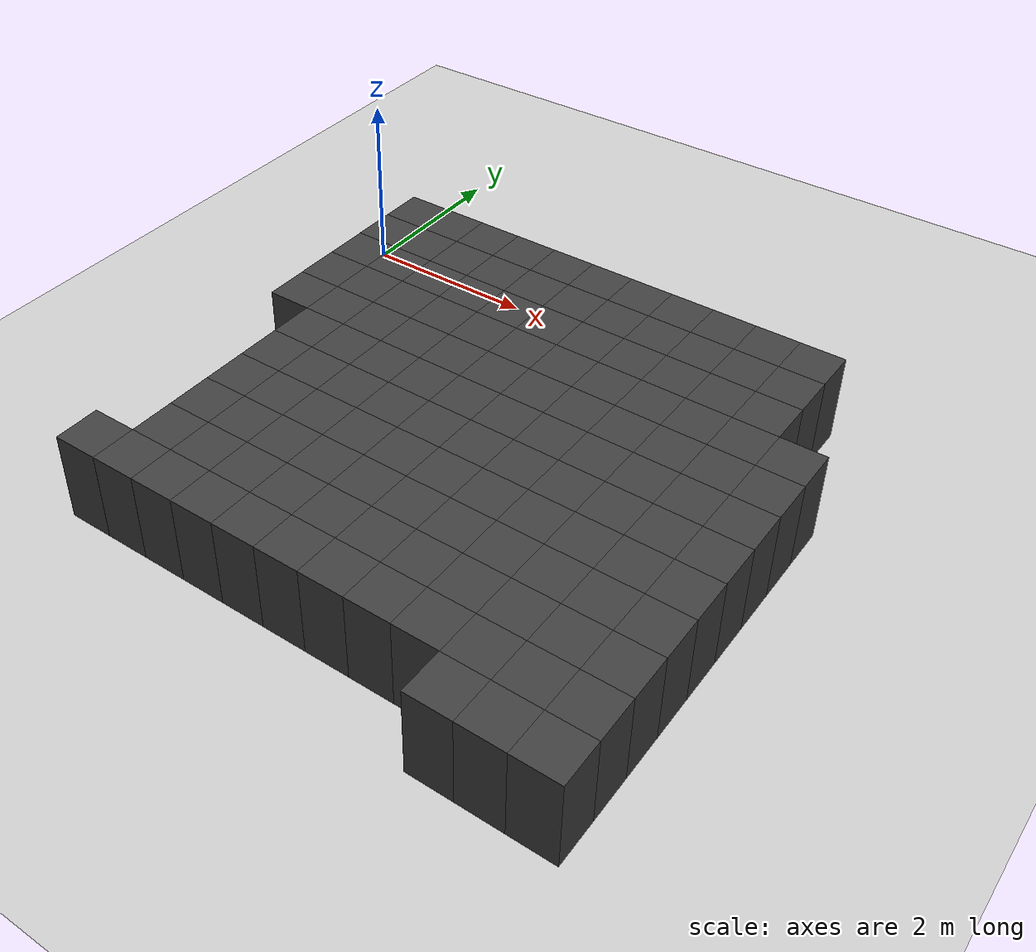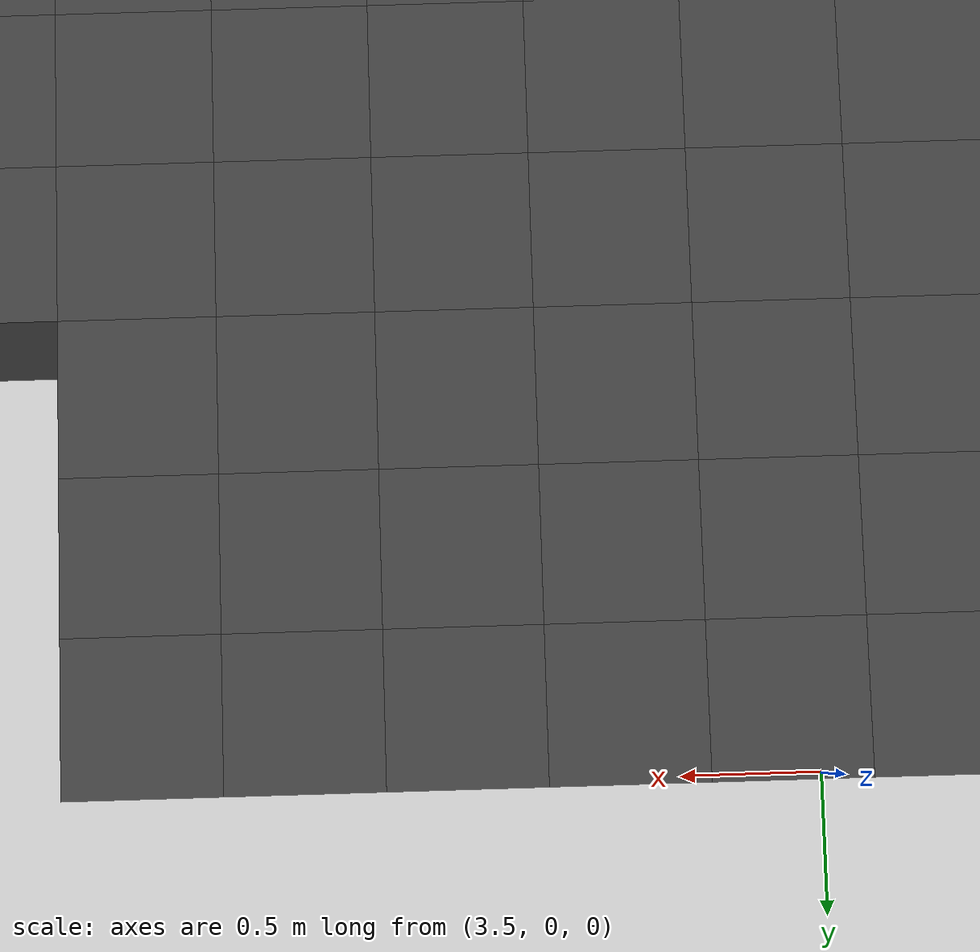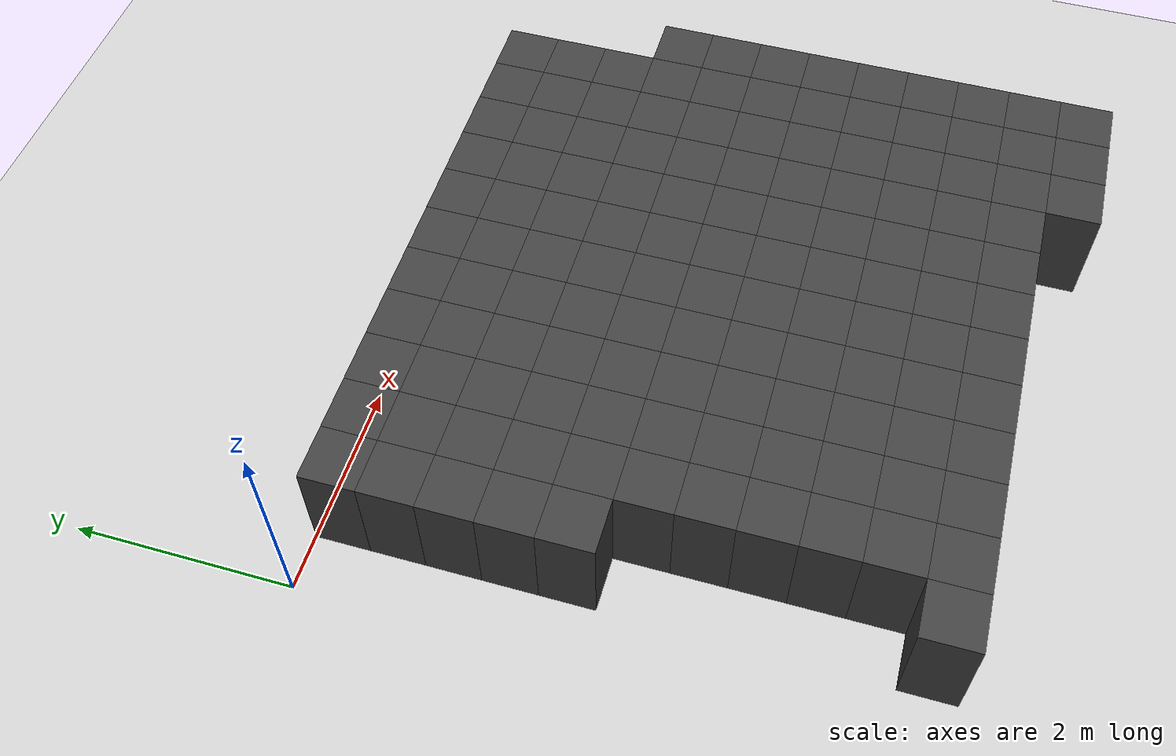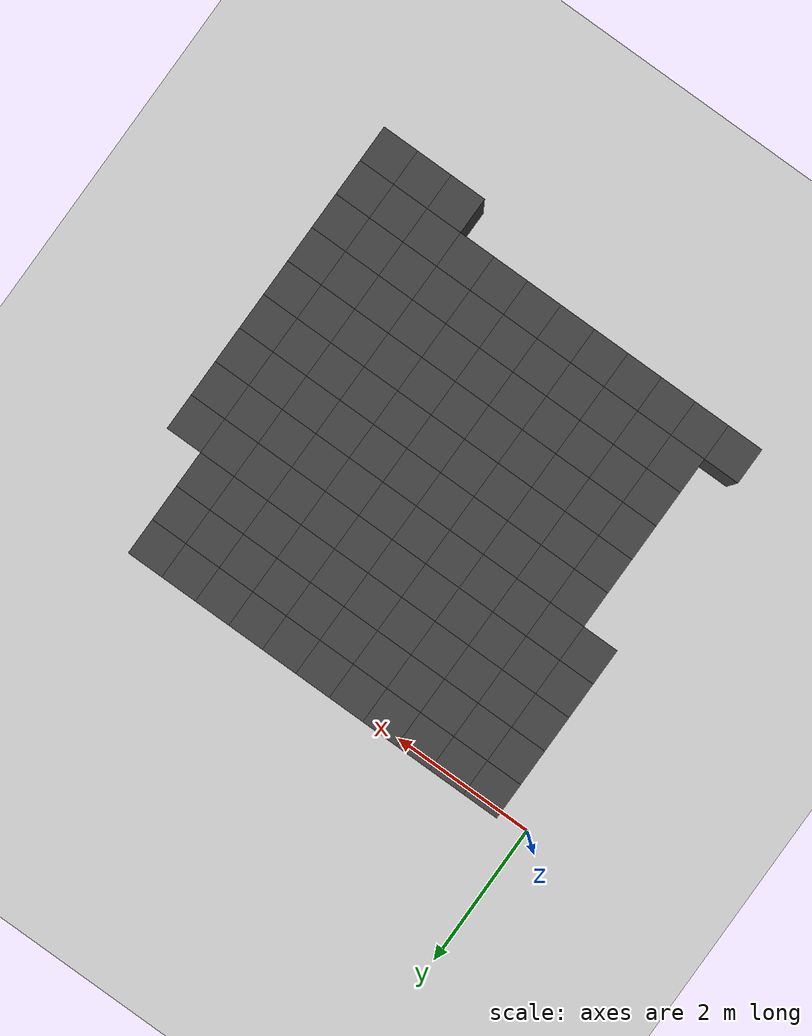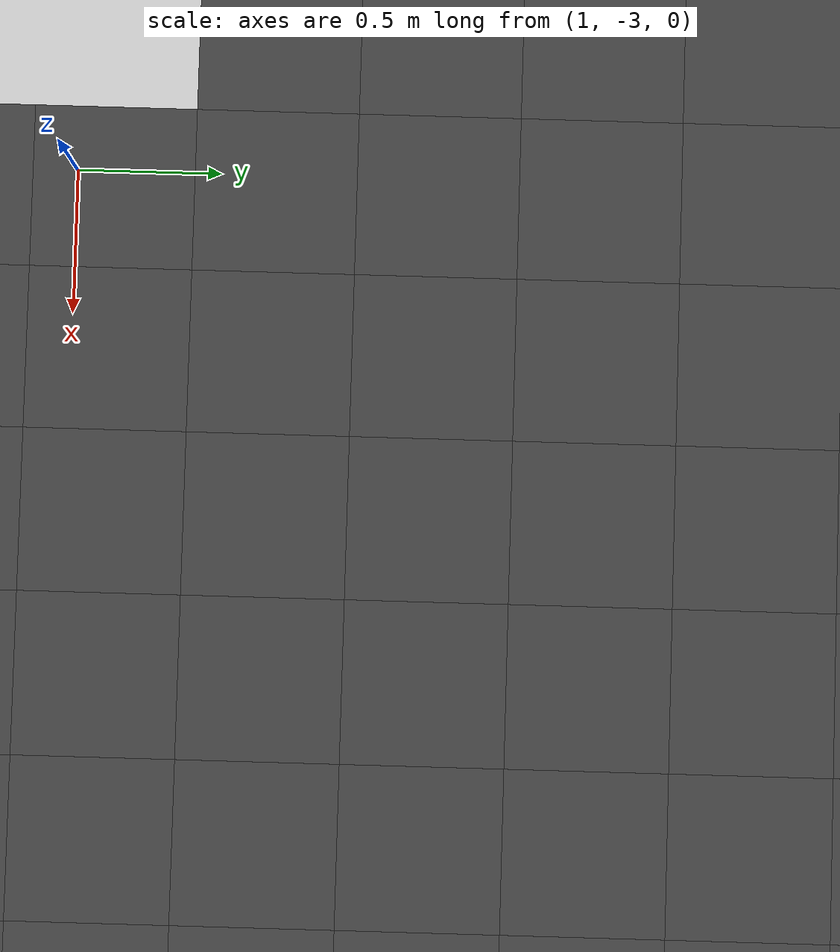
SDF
<sdf version="1.7">
 <world name="map_11779">
  <model name="ground_plane">
   <static>true</static>
   <link name="link">
    <collision name="collision">
     <geometry><plane><normal>0 0 1</normal><size>200 200</size></plane></geometry>
    </collision>
    <visual name="visual">
     <geometry><plane><normal>0 0 1</normal><size>200 200</size></plane></geometry>
     <material><ambient>0.8 0.8 0.8 1</ambient><diffuse>0.8 0.8 0.8 1</diffuse></material>
    </visual>
   </link>
  </model>
  <model name="maze_environment">
   <static>true</static>
   <link name="wall_1030">
    <pose>0.750 -0.250 0.500 0 0 0</pose>
    <collision name="col"><geometry><box><size>0.5 0.5 1.0</size></box></geometry></collision>
    <visual name="vis">
     <geometry><box><size>0.5 0.5 1.0</size></box></geometry>
     <material><ambient>0.15 0.15 0.15 1</ambient><diffuse>0.25 0.25 0.25 1</diffuse></material>
    </visual>
   </link>
   <link name="wall_1031">
    <pose>1.250 -0.250 0.500 0 0 0</pose>
    <collision name="col"><geometry><box><size>0.5 0.5 1.0</size></box></geometry></collision>
    <visual name="vis">
     <geometry><box><size>0.5 0.5 1.0</size></box></geometry>
     <material><ambient>0.15 0.15 0.15 1</ambient><diffuse>0.25 0.25 0.25 1</diffuse></material>
    </visual>
   </link>
   <link name="wall_1032">
    <pose>1.750 -0.250 0.500 0 0 0</pose>
    <collision name="col"><geometry><box><size>0.5 0.5 1.0</size></box></geometry></collision>
    <visual name="vis">
     <geometry><box><size>0.5 0.5 1.0</size></box></geometry>
     <material><ambient>0.15 0.15 0.15 1</ambient><diffuse>0.25 0.25 0.25 1</diffuse></material>
    </visual>
   </link>
   <link name="wall_1033">
    <pose>2.250 -0.250 0.500 0 0 0</pose>
    <collision name="col"><geometry><box><size>0.5 0.5 1.0</size></box></geometry></collision>
    <visual name="vis">
     <geometry><box><size>0.5 0.5 1.0</size></box></geometry>
     <material><ambient>0.15 0.15 0.15 1</ambient><diffuse>0.25 0.25 0.25 1</diffuse></material>
    </visual>
   </link>
   <link name="wall_1034">
    <pose>2.750 -0.250 0.500 0 0 0</pose>
    <collision name="col"><geometry><box><size>0.5 0.5 1.0</size></box></geometry></collision>
    <visual name="vis">
     <geometry><box><size>0.5 0.5 1.0</size></box></geometry>
     <material><ambient>0.15 0.15 0.15 1</ambient><diffuse>0.25 0.25 0.25 1</diffuse></material>
    </visual>
   </link>
   <link name="wall_1035">
    <pose>3.250 -0.250 0.500 0 0 0</pose>
    <collision name="col"><geometry><box><size>0.5 0.5 1.0</size></box></geometry></collision>
    <visual name="vis">
     <geometry><box><size>0.5 0.5 1.0</size></box></geometry>
     <material><ambient>0.15 0.15 0.15 1</ambient><diffuse>0.25 0.25 0.25 1</diffuse></material>
    </visual>
   </link>
   <link name="wall_1036">
    <pose>3.750 -0.250 0.500 0 0 0</pose>
    <collision name="col"><geometry><box><size>0.5 0.5 1.0</size></box></geometry></collision>
    <visual name="vis">
     <geometry><box><size>0.5 0.5 1.0</size></box></geometry>
     <material><ambient>0.15 0.15 0.15 1</ambient><diffuse>0.25 0.25 0.25 1</diffuse></material>
    </visual>
   </link>
   <link name="wall_1037">
    <pose>4.250 -0.250 0.500 0 0 0</pose>
    <collision name="col"><geometry><box><size>0.5 0.5 1.0</size></box></geometry></collision>
    <visual name="vis">
     <geometry><box><size>0.5 0.5 1.0</size></box></geometry>
     <material><ambient>0.15 0.15 0.15 1</ambient><diffuse>0.25 0.25 0.25 1</diffuse></material>
    </visual>
   </link>
   <link name="wall_1038">
    <pose>4.750 -0.250 0.500 0 0 0</pose>
    <collision name="col"><geometry><box><size>0.5 0.5 1.0</size></box></geometry></collision>
    <visual name="vis">
     <geometry><box><size>0.5 0.5 1.0</size></box></geometry>
     <material><ambient>0.15 0.15 0.15 1</ambient><diffuse>0.25 0.25 0.25 1</diffuse></material>
    </visual>
   </link>
   <link name="wall_1039">
    <pose>5.250 -0.250 0.500 0 0 0</pose>
    <collision name="col"><geometry><box><size>0.5 0.5 1.0</size></box></geometry></collision>
    <visual name="vis">
     <geometry><box><size>0.5 0.5 1.0</size></box></geometry>
     <material><ambient>0.15 0.15 0.15 1</ambient><diffuse>0.25 0.25 0.25 1</diffuse></material>
    </visual>
   </link>
   <link name="wall_1040">
    <pose>5.750 -0.250 0.500 0 0 0</pose>
    <collision name="col"><geometry><box><size>0.5 0.5 1.0</size></box></geometry></collision>
    <visual name="vis">
     <geometry><box><size>0.5 0.5 1.0</size></box></geometry>
     <material><ambient>0.15 0.15 0.15 1</ambient><diffuse>0.25 0.25 0.25 1</diffuse></material>
    </visual>
   </link>
   <link name="wall_1071">
    <pose>0.750 -0.750 0.500 0 0 0</pose>
    <collision name="col"><geometry><box><size>0.5 0.5 1.0</size></box></geometry></collision>
    <visual name="vis">
     <geometry><box><size>0.5 0.5 1.0</size></box></geometry>
     <material><ambient>0.15 0.15 0.15 1</ambient><diffuse>0.25 0.25 0.25 1</diffuse></material>
    </visual>
   </link>
   <link name="wall_1072">
    <pose>1.250 -0.750 0.500 0 0 0</pose>
    <collision name="col"><geometry><box><size>0.5 0.5 1.0</size></box></geometry></collision>
    <visual name="vis">
     <geometry><box><size>0.5 0.5 1.0</size></box></geometry>
     <material><ambient>0.15 0.15 0.15 1</ambient><diffuse>0.25 0.25 0.25 1</diffuse></material>
    </visual>
   </link>
   <link name="wall_1073">
    <pose>1.750 -0.750 0.500 0 0 0</pose>
    <collision name="col"><geometry><box><size>0.5 0.5 1.0</size></box></geometry></collision>
    <visual name="vis">
     <geometry><box><size>0.5 0.5 1.0</size></box></geometry>
     <material><ambient>0.15 0.15 0.15 1</ambient><diffuse>0.25 0.25 0.25 1</diffuse></material>
    </visual>
   </link>
   <link name="wall_1074">
    <pose>2.250 -0.750 0.500 0 0 0</pose>
    <collision name="col"><geometry><box><size>0.5 0.5 1.0</size></box></geometry></collision>
    <visual name="vis">
     <geometry><box><size>0.5 0.5 1.0</size></box></geometry>
     <material><ambient>0.15 0.15 0.15 1</ambient><diffuse>0.25 0.25 0.25 1</diffuse></material>
    </visual>
   </link>
   <link name="wall_1075">
    <pose>2.750 -0.750 0.500 0 0 0</pose>
    <collision name="col"><geometry><box><size>0.5 0.5 1.0</size></box></geometry></collision>
    <visual name="vis">
     <geometry><box><size>0.5 0.5 1.0</size></box></geometry>
     <material><ambient>0.15 0.15 0.15 1</ambient><diffuse>0.25 0.25 0.25 1</diffuse></material>
    </visual>
   </link>
   <link name="wall_1076">
    <pose>3.250 -0.750 0.500 0 0 0</pose>
    <collision name="col"><geometry><box><size>0.5 0.5 1.0</size></box></geometry></collision>
    <visual name="vis">
     <geometry><box><size>0.5 0.5 1.0</size></box></geometry>
     <material><ambient>0.15 0.15 0.15 1</ambient><diffuse>0.25 0.25 0.25 1</diffuse></material>
    </visual>
   </link>
   <link name="wall_1077">
    <pose>3.750 -0.750 0.500 0 0 0</pose>
    <collision name="col"><geometry><box><size>0.5 0.5 1.0</size></box></geometry></collision>
    <visual name="vis">
     <geometry><box><size>0.5 0.5 1.0</size></box></geometry>
     <material><ambient>0.15 0.15 0.15 1</ambient><diffuse>0.25 0.25 0.25 1</diffuse></material>
    </visual>
   </link>
   <link name="wall_1078">
    <pose>4.250 -0.750 0.500 0 0 0</pose>
    <collision name="col"><geometry><box><size>0.5 0.5 1.0</size></box></geometry></collision>
    <visual name="vis">
     <geometry><box><size>0.5 0.5 1.0</size></box></geometry>
     <material><ambient>0.15 0.15 0.15 1</ambient><diffuse>0.25 0.25 0.25 1</diffuse></material>
    </visual>
   </link>
   <link name="wall_1079">
    <pose>4.750 -0.750 0.500 0 0 0</pose>
    <collision name="col"><geometry><box><size>0.5 0.5 1.0</size></box></geometry></collision>
    <visual name="vis">
     <geometry><box><size>0.5 0.5 1.0</size></box></geometry>
     <material><ambient>0.15 0.15 0.15 1</ambient><diffuse>0.25 0.25 0.25 1</diffuse></material>
    </visual>
   </link>
   <link name="wall_1080">
    <pose>5.250 -0.750 0.500 0 0 0</pose>
    <collision name="col"><geometry><box><size>0.5 0.5 1.0</size></box></geometry></collision>
    <visual name="vis">
     <geometry><box><size>0.5 0.5 1.0</size></box></geometry>
     <material><ambient>0.15 0.15 0.15 1</ambient><diffuse>0.25 0.25 0.25 1</diffuse></material>
    </visual>
   </link>
   <link name="wall_1081">
    <pose>5.750 -0.750 0.500 0 0 0</pose>
    <collision name="col"><geometry><box><size>0.5 0.5 1.0</size></box></geometry></collision>
    <visual name="vis">
     <geometry><box><size>0.5 0.5 1.0</size></box></geometry>
     <material><ambient>0.15 0.15 0.15 1</ambient><diffuse>0.25 0.25 0.25 1</diffuse></material>
    </visual>
   </link>
   <link name="wall_1111">
    <pose>0.750 -1.250 0.500 0 0 0</pose>
    <collision name="col"><geometry><box><size>0.5 0.5 1.0</size></box></geometry></collision>
    <visual name="vis">
     <geometry><box><size>0.5 0.5 1.0</size></box></geometry>
     <material><ambient>0.15 0.15 0.15 1</ambient><diffuse>0.25 0.25 0.25 1</diffuse></material>
    </visual>
   </link>
   <link name="wall_1112">
    <pose>1.250 -1.250 0.500 0 0 0</pose>
    <collision name="col"><geometry><box><size>0.5 0.5 1.0</size></box></geometry></collision>
    <visual name="vis">
     <geometry><box><size>0.5 0.5 1.0</size></box></geometry>
     <material><ambient>0.15 0.15 0.15 1</ambient><diffuse>0.25 0.25 0.25 1</diffuse></material>
    </visual>
   </link>
   <link name="wall_1113">
    <pose>1.750 -1.250 0.500 0 0 0</pose>
    <collision name="col"><geometry><box><size>0.5 0.5 1.0</size></box></geometry></collision>
    <visual name="vis">
     <geometry><box><size>0.5 0.5 1.0</size></box></geometry>
     <material><ambient>0.15 0.15 0.15 1</ambient><diffuse>0.25 0.25 0.25 1</diffuse></material>
    </visual>
   </link>
   <link name="wall_1114">
    <pose>2.250 -1.250 0.500 0 0 0</pose>
    <collision name="col"><geometry><box><size>0.5 0.5 1.0</size></box></geometry></collision>
    <visual name="vis">
     <geometry><box><size>0.5 0.5 1.0</size></box></geometry>
     <material><ambient>0.15 0.15 0.15 1</ambient><diffuse>0.25 0.25 0.25 1</diffuse></material>
    </visual>
   </link>
   <link name="wall_1115">
    <pose>2.750 -1.250 0.500 0 0 0</pose>
    <collision name="col"><geometry><box><size>0.5 0.5 1.0</size></box></geometry></collision>
    <visual name="vis">
     <geometry><box><size>0.5 0.5 1.0</size></box></geometry>
     <material><ambient>0.15 0.15 0.15 1</ambient><diffuse>0.25 0.25 0.25 1</diffuse></material>
    </visual>
   </link>
   <link name="wall_1116">
    <pose>3.250 -1.250 0.500 0 0 0</pose>
    <collision name="col"><geometry><box><size>0.5 0.5 1.0</size></box></geometry></collision>
    <visual name="vis">
     <geometry><box><size>0.5 0.5 1.0</size></box></geometry>
     <material><ambient>0.15 0.15 0.15 1</ambient><diffuse>0.25 0.25 0.25 1</diffuse></material>
    </visual>
   </link>
   <link name="wall_1117">
    <pose>3.750 -1.250 0.500 0 0 0</pose>
    <collision name="col"><geometry><box><size>0.5 0.5 1.0</size></box></geometry></collision>
    <visual name="vis">
     <geometry><box><size>0.5 0.5 1.0</size></box></geometry>
     <material><ambient>0.15 0.15 0.15 1</ambient><diffuse>0.25 0.25 0.25 1</diffuse></material>
    </visual>
   </link>
   <link name="wall_1118">
    <pose>4.250 -1.250 0.500 0 0 0</pose>
    <collision name="col"><geometry><box><size>0.5 0.5 1.0</size></box></geometry></collision>
    <visual name="vis">
     <geometry><box><size>0.5 0.5 1.0</size></box></geometry>
     <material><ambient>0.15 0.15 0.15 1</ambient><diffuse>0.25 0.25 0.25 1</diffuse></material>
    </visual>
   </link>
   <link name="wall_1119">
    <pose>4.750 -1.250 0.500 0 0 0</pose>
    <collision name="col"><geometry><box><size>0.5 0.5 1.0</size></box></geometry></collision>
    <visual name="vis">
     <geometry><box><size>0.5 0.5 1.0</size></box></geometry>
     <material><ambient>0.15 0.15 0.15 1</ambient><diffuse>0.25 0.25 0.25 1</diffuse></material>
    </visual>
   </link>
   <link name="wall_1120">
    <pose>5.250 -1.250 0.500 0 0 0</pose>
    <collision name="col"><geometry><box><size>0.5 0.5 1.0</size></box></geometry></collision>
    <visual name="vis">
     <geometry><box><size>0.5 0.5 1.0</size></box></geometry>
     <material><ambient>0.15 0.15 0.15 1</ambient><diffuse>0.25 0.25 0.25 1</diffuse></material>
    </visual>
   </link>
   <link name="wall_1121">
    <pose>5.750 -1.250 0.500 0 0 0</pose>
    <collision name="col"><geometry><box><size>0.5 0.5 1.0</size></box></geometry></collision>
    <visual name="vis">
     <geometry><box><size>0.5 0.5 1.0</size></box></geometry>
     <material><ambient>0.15 0.15 0.15 1</ambient><diffuse>0.25 0.25 0.25 1</diffuse></material>
    </visual>
   </link>
   <link name="wall_1153">
    <pose>0.750 -1.750 0.500 0 0 0</pose>
    <collision name="col"><geometry><box><size>0.5 0.5 1.0</size></box></geometry></collision>
    <visual name="vis">
     <geometry><box><size>0.5 0.5 1.0</size></box></geometry>
     <material><ambient>0.15 0.15 0.15 1</ambient><diffuse>0.25 0.25 0.25 1</diffuse></material>
    </visual>
   </link>
   <link name="wall_1154">
    <pose>1.250 -1.750 0.500 0 0 0</pose>
    <collision name="col"><geometry><box><size>0.5 0.5 1.0</size></box></geometry></collision>
    <visual name="vis">
     <geometry><box><size>0.5 0.5 1.0</size></box></geometry>
     <material><ambient>0.15 0.15 0.15 1</ambient><diffuse>0.25 0.25 0.25 1</diffuse></material>
    </visual>
   </link>
   <link name="wall_1155">
    <pose>1.750 -1.750 0.500 0 0 0</pose>
    <collision name="col"><geometry><box><size>0.5 0.5 1.0</size></box></geometry></collision>
    <visual name="vis">
     <geometry><box><size>0.5 0.5 1.0</size></box></geometry>
     <material><ambient>0.15 0.15 0.15 1</ambient><diffuse>0.25 0.25 0.25 1</diffuse></material>
    </visual>
   </link>
   <link name="wall_1156">
    <pose>2.250 -1.750 0.500 0 0 0</pose>
    <collision name="col"><geometry><box><size>0.5 0.5 1.0</size></box></geometry></collision>
    <visual name="vis">
     <geometry><box><size>0.5 0.5 1.0</size></box></geometry>
     <material><ambient>0.15 0.15 0.15 1</ambient><diffuse>0.25 0.25 0.25 1</diffuse></material>
    </visual>
   </link>
   <link name="wall_1157">
    <pose>2.750 -1.750 0.500 0 0 0</pose>
    <collision name="col"><geometry><box><size>0.5 0.5 1.0</size></box></geometry></collision>
    <visual name="vis">
     <geometry><box><size>0.5 0.5 1.0</size></box></geometry>
     <material><ambient>0.15 0.15 0.15 1</ambient><diffuse>0.25 0.25 0.25 1</diffuse></material>
    </visual>
   </link>
   <link name="wall_1158">
    <pose>3.250 -1.750 0.500 0 0 0</pose>
    <collision name="col"><geometry><box><size>0.5 0.5 1.0</size></box></geometry></collision>
    <visual name="vis">
     <geometry><box><size>0.5 0.5 1.0</size></box></geometry>
     <material><ambient>0.15 0.15 0.15 1</ambient><diffuse>0.25 0.25 0.25 1</diffuse></material>
    </visual>
   </link>
   <link name="wall_1159">
    <pose>3.750 -1.750 0.500 0 0 0</pose>
    <collision name="col"><geometry><box><size>0.5 0.5 1.0</size></box></geometry></collision>
    <visual name="vis">
     <geometry><box><size>0.5 0.5 1.0</size></box></geometry>
     <material><ambient>0.15 0.15 0.15 1</ambient><diffuse>0.25 0.25 0.25 1</diffuse></material>
    </visual>
   </link>
   <link name="wall_1160">
    <pose>4.250 -1.750 0.500 0 0 0</pose>
    <collision name="col"><geometry><box><size>0.5 0.5 1.0</size></box></geometry></collision>
    <visual name="vis">
     <geometry><box><size>0.5 0.5 1.0</size></box></geometry>
     <material><ambient>0.15 0.15 0.15 1</ambient><diffuse>0.25 0.25 0.25 1</diffuse></material>
    </visual>
   </link>
   <link name="wall_1161">
    <pose>4.750 -1.750 0.500 0 0 0</pose>
    <collision name="col"><geometry><box><size>0.5 0.5 1.0</size></box></geometry></collision>
    <visual name="vis">
     <geometry><box><size>0.5 0.5 1.0</size></box></geometry>
     <material><ambient>0.15 0.15 0.15 1</ambient><diffuse>0.25 0.25 0.25 1</diffuse></material>
    </visual>
   </link>
   <link name="wall_1162">
    <pose>5.250 -1.750 0.500 0 0 0</pose>
    <collision name="col"><geometry><box><size>0.5 0.5 1.0</size></box></geometry></collision>
    <visual name="vis">
     <geometry><box><size>0.5 0.5 1.0</size></box></geometry>
     <material><ambient>0.15 0.15 0.15 1</ambient><diffuse>0.25 0.25 0.25 1</diffuse></material>
    </visual>
   </link>
   <link name="wall_1163">
    <pose>5.750 -1.750 0.500 0 0 0</pose>
    <collision name="col"><geometry><box><size>0.5 0.5 1.0</size></box></geometry></collision>
    <visual name="vis">
     <geometry><box><size>0.5 0.5 1.0</size></box></geometry>
     <material><ambient>0.15 0.15 0.15 1</ambient><diffuse>0.25 0.25 0.25 1</diffuse></material>
    </visual>
   </link>
   <link name="wall_1164">
    <pose>6.250 -1.750 0.500 0 0 0</pose>
    <collision name="col"><geometry><box><size>0.5 0.5 1.0</size></box></geometry></collision>
    <visual name="vis">
     <geometry><box><size>0.5 0.5 1.0</size></box></geometry>
     <material><ambient>0.15 0.15 0.15 1</ambient><diffuse>0.25 0.25 0.25 1</diffuse></material>
    </visual>
   </link>
   <link name="wall_1195">
    <pose>0.750 -2.250 0.500 0 0 0</pose>
    <collision name="col"><geometry><box><size>0.5 0.5 1.0</size></box></geometry></collision>
    <visual name="vis">
     <geometry><box><size>0.5 0.5 1.0</size></box></geometry>
     <material><ambient>0.15 0.15 0.15 1</ambient><diffuse>0.25 0.25 0.25 1</diffuse></material>
    </visual>
   </link>
   <link name="wall_1196">
    <pose>1.250 -2.250 0.500 0 0 0</pose>
    <collision name="col"><geometry><box><size>0.5 0.5 1.0</size></box></geometry></collision>
    <visual name="vis">
     <geometry><box><size>0.5 0.5 1.0</size></box></geometry>
     <material><ambient>0.15 0.15 0.15 1</ambient><diffuse>0.25 0.25 0.25 1</diffuse></material>
    </visual>
   </link>
   <link name="wall_1197">
    <pose>1.750 -2.250 0.500 0 0 0</pose>
    <collision name="col"><geometry><box><size>0.5 0.5 1.0</size></box></geometry></collision>
    <visual name="vis">
     <geometry><box><size>0.5 0.5 1.0</size></box></geometry>
     <material><ambient>0.15 0.15 0.15 1</ambient><diffuse>0.25 0.25 0.25 1</diffuse></material>
    </visual>
   </link>
   <link name="wall_1198">
    <pose>2.250 -2.250 0.500 0 0 0</pose>
    <collision name="col"><geometry><box><size>0.5 0.5 1.0</size></box></geometry></collision>
    <visual name="vis">
     <geometry><box><size>0.5 0.5 1.0</size></box></geometry>
     <material><ambient>0.15 0.15 0.15 1</ambient><diffuse>0.25 0.25 0.25 1</diffuse></material>
    </visual>
   </link>
   <link name="wall_1199">
    <pose>2.750 -2.250 0.500 0 0 0</pose>
    <collision name="col"><geometry><box><size>0.5 0.5 1.0</size></box></geometry></collision>
    <visual name="vis">
     <geometry><box><size>0.5 0.5 1.0</size></box></geometry>
     <material><ambient>0.15 0.15 0.15 1</ambient><diffuse>0.25 0.25 0.25 1</diffuse></material>
    </visual>
   </link>
   <link name="wall_1200">
    <pose>3.250 -2.250 0.500 0 0 0</pose>
    <collision name="col"><geometry><box><size>0.5 0.5 1.0</size></box></geometry></collision>
    <visual name="vis">
     <geometry><box><size>0.5 0.5 1.0</size></box></geometry>
     <material><ambient>0.15 0.15 0.15 1</ambient><diffuse>0.25 0.25 0.25 1</diffuse></material>
    </visual>
   </link>
   <link name="wall_1201">
    <pose>3.750 -2.250 0.500 0 0 0</pose>
    <collision name="col"><geometry><box><size>0.5 0.5 1.0</size></box></geometry></collision>
    <visual name="vis">
     <geometry><box><size>0.5 0.5 1.0</size></box></geometry>
     <material><ambient>0.15 0.15 0.15 1</ambient><diffuse>0.25 0.25 0.25 1</diffuse></material>
    </visual>
   </link>
   <link name="wall_1202">
    <pose>4.250 -2.250 0.500 0 0 0</pose>
    <collision name="col"><geometry><box><size>0.5 0.5 1.0</size></box></geometry></collision>
    <visual name="vis">
     <geometry><box><size>0.5 0.5 1.0</size></box></geometry>
     <material><ambient>0.15 0.15 0.15 1</ambient><diffuse>0.25 0.25 0.25 1</diffuse></material>
    </visual>
   </link>
   <link name="wall_1203">
    <pose>4.750 -2.250 0.500 0 0 0</pose>
    <collision name="col"><geometry><box><size>0.5 0.5 1.0</size></box></geometry></collision>
    <visual name="vis">
     <geometry><box><size>0.5 0.5 1.0</size></box></geometry>
     <material><ambient>0.15 0.15 0.15 1</ambient><diffuse>0.25 0.25 0.25 1</diffuse></material>
    </visual>
   </link>
   <link name="wall_1204">
    <pose>5.250 -2.250 0.500 0 0 0</pose>
    <collision name="col"><geometry><box><size>0.5 0.5 1.0</size></box></geometry></collision>
    <visual name="vis">
     <geometry><box><size>0.5 0.5 1.0</size></box></geometry>
     <material><ambient>0.15 0.15 0.15 1</ambient><diffuse>0.25 0.25 0.25 1</diffuse></material>
    </visual>
   </link>
   <link name="wall_1205">
    <pose>5.750 -2.250 0.500 0 0 0</pose>
    <collision name="col"><geometry><box><size>0.5 0.5 1.0</size></box></geometry></collision>
    <visual name="vis">
     <geometry><box><size>0.5 0.5 1.0</size></box></geometry>
     <material><ambient>0.15 0.15 0.15 1</ambient><diffuse>0.25 0.25 0.25 1</diffuse></material>
    </visual>
   </link>
   <link name="wall_1206">
    <pose>6.250 -2.250 0.500 0 0 0</pose>
    <collision name="col"><geometry><box><size>0.5 0.5 1.0</size></box></geometry></collision>
    <visual name="vis">
     <geometry><box><size>0.5 0.5 1.0</size></box></geometry>
     <material><ambient>0.15 0.15 0.15 1</ambient><diffuse>0.25 0.25 0.25 1</diffuse></material>
    </visual>
   </link>
   <link name="wall_1236">
    <pose>1.250 -2.750 0.500 0 0 0</pose>
    <collision name="col"><geometry><box><size>0.5 0.5 1.0</size></box></geometry></collision>
    <visual name="vis">
     <geometry><box><size>0.5 0.5 1.0</size></box></geometry>
     <material><ambient>0.15 0.15 0.15 1</ambient><diffuse>0.25 0.25 0.25 1</diffuse></material>
    </visual>
   </link>
   <link name="wall_1237">
    <pose>1.750 -2.750 0.500 0 0 0</pose>
    <collision name="col"><geometry><box><size>0.5 0.5 1.0</size></box></geometry></collision>
    <visual name="vis">
     <geometry><box><size>0.5 0.5 1.0</size></box></geometry>
     <material><ambient>0.15 0.15 0.15 1</ambient><diffuse>0.25 0.25 0.25 1</diffuse></material>
    </visual>
   </link>
   <link name="wall_1238">
    <pose>2.250 -2.750 0.500 0 0 0</pose>
    <collision name="col"><geometry><box><size>0.5 0.5 1.0</size></box></geometry></collision>
    <visual name="vis">
     <geometry><box><size>0.5 0.5 1.0</size></box></geometry>
     <material><ambient>0.15 0.15 0.15 1</ambient><diffuse>0.25 0.25 0.25 1</diffuse></material>
    </visual>
   </link>
   <link name="wall_1239">
    <pose>2.750 -2.750 0.500 0 0 0</pose>
    <collision name="col"><geometry><box><size>0.5 0.5 1.0</size></box></geometry></collision>
    <visual name="vis">
     <geometry><box><size>0.5 0.5 1.0</size></box></geometry>
     <material><ambient>0.15 0.15 0.15 1</ambient><diffuse>0.25 0.25 0.25 1</diffuse></material>
    </visual>
   </link>
   <link name="wall_1240">
    <pose>3.250 -2.750 0.500 0 0 0</pose>
    <collision name="col"><geometry><box><size>0.5 0.5 1.0</size></box></geometry></collision>
    <visual name="vis">
     <geometry><box><size>0.5 0.5 1.0</size></box></geometry>
     <material><ambient>0.15 0.15 0.15 1</ambient><diffuse>0.25 0.25 0.25 1</diffuse></material>
    </visual>
   </link>
   <link name="wall_1241">
    <pose>3.750 -2.750 0.500 0 0 0</pose>
    <collision name="col"><geometry><box><size>0.5 0.5 1.0</size></box></geometry></collision>
    <visual name="vis">
     <geometry><box><size>0.5 0.5 1.0</size></box></geometry>
     <material><ambient>0.15 0.15 0.15 1</ambient><diffuse>0.25 0.25 0.25 1</diffuse></material>
    </visual>
   </link>
   <link name="wall_1242">
    <pose>4.250 -2.750 0.500 0 0 0</pose>
    <collision name="col"><geometry><box><size>0.5 0.5 1.0</size></box></geometry></collision>
    <visual name="vis">
     <geometry><box><size>0.5 0.5 1.0</size></box></geometry>
     <material><ambient>0.15 0.15 0.15 1</ambient><diffuse>0.25 0.25 0.25 1</diffuse></material>
    </visual>
   </link>
   <link name="wall_1243">
    <pose>4.750 -2.750 0.500 0 0 0</pose>
    <collision name="col"><geometry><box><size>0.5 0.5 1.0</size></box></geometry></collision>
    <visual name="vis">
     <geometry><box><size>0.5 0.5 1.0</size></box></geometry>
     <material><ambient>0.15 0.15 0.15 1</ambient><diffuse>0.25 0.25 0.25 1</diffuse></material>
    </visual>
   </link>
   <link name="wall_1244">
    <pose>5.250 -2.750 0.500 0 0 0</pose>
    <collision name="col"><geometry><box><size>0.5 0.5 1.0</size></box></geometry></collision>
    <visual name="vis">
     <geometry><box><size>0.5 0.5 1.0</size></box></geometry>
     <material><ambient>0.15 0.15 0.15 1</ambient><diffuse>0.25 0.25 0.25 1</diffuse></material>
    </visual>
   </link>
   <link name="wall_1245">
    <pose>5.750 -2.750 0.500 0 0 0</pose>
    <collision name="col"><geometry><box><size>0.5 0.5 1.0</size></box></geometry></collision>
    <visual name="vis">
     <geometry><box><size>0.5 0.5 1.0</size></box></geometry>
     <material><ambient>0.15 0.15 0.15 1</ambient><diffuse>0.25 0.25 0.25 1</diffuse></material>
    </visual>
   </link>
   <link name="wall_1246">
    <pose>6.250 -2.750 0.500 0 0 0</pose>
    <collision name="col"><geometry><box><size>0.5 0.5 1.0</size></box></geometry></collision>
    <visual name="vis">
     <geometry><box><size>0.5 0.5 1.0</size></box></geometry>
     <material><ambient>0.15 0.15 0.15 1</ambient><diffuse>0.25 0.25 0.25 1</diffuse></material>
    </visual>
   </link>
   <link name="wall_1280">
    <pose>1.250 -3.250 0.500 0 0 0</pose>
    <collision name="col"><geometry><box><size>0.5 0.5 1.0</size></box></geometry></collision>
    <visual name="vis">
     <geometry><box><size>0.5 0.5 1.0</size></box></geometry>
     <material><ambient>0.15 0.15 0.15 1</ambient><diffuse>0.25 0.25 0.25 1</diffuse></material>
    </visual>
   </link>
   <link name="wall_1281">
    <pose>1.750 -3.250 0.500 0 0 0</pose>
    <collision name="col"><geometry><box><size>0.5 0.5 1.0</size></box></geometry></collision>
    <visual name="vis">
     <geometry><box><size>0.5 0.5 1.0</size></box></geometry>
     <material><ambient>0.15 0.15 0.15 1</ambient><diffuse>0.25 0.25 0.25 1</diffuse></material>
    </visual>
   </link>
   <link name="wall_1282">
    <pose>2.250 -3.250 0.500 0 0 0</pose>
    <collision name="col"><geometry><box><size>0.5 0.5 1.0</size></box></geometry></collision>
    <visual name="vis">
     <geometry><box><size>0.5 0.5 1.0</size></box></geometry>
     <material><ambient>0.15 0.15 0.15 1</ambient><diffuse>0.25 0.25 0.25 1</diffuse></material>
    </visual>
   </link>
   <link name="wall_1283">
    <pose>2.750 -3.250 0.500 0 0 0</pose>
    <collision name="col"><geometry><box><size>0.5 0.5 1.0</size></box></geometry></collision>
    <visual name="vis">
     <geometry><box><size>0.5 0.5 1.0</size></box></geometry>
     <material><ambient>0.15 0.15 0.15 1</ambient><diffuse>0.25 0.25 0.25 1</diffuse></material>
    </visual>
   </link>
   <link name="wall_1284">
    <pose>3.250 -3.250 0.500 0 0 0</pose>
    <collision name="col"><geometry><box><size>0.5 0.5 1.0</size></box></geometry></collision>
    <visual name="vis">
     <geometry><box><size>0.5 0.5 1.0</size></box></geometry>
     <material><ambient>0.15 0.15 0.15 1</ambient><diffuse>0.25 0.25 0.25 1</diffuse></material>
    </visual>
   </link>
   <link name="wall_1285">
    <pose>3.750 -3.250 0.500 0 0 0</pose>
    <collision name="col"><geometry><box><size>0.5 0.5 1.0</size></box></geometry></collision>
    <visual name="vis">
     <geometry><box><size>0.5 0.5 1.0</size></box></geometry>
     <material><ambient>0.15 0.15 0.15 1</ambient><diffuse>0.25 0.25 0.25 1</diffuse></material>
    </visual>
   </link>
   <link name="wall_1286">
    <pose>4.250 -3.250 0.500 0 0 0</pose>
    <collision name="col"><geometry><box><size>0.5 0.5 1.0</size></box></geometry></collision>
    <visual name="vis">
     <geometry><box><size>0.5 0.5 1.0</size></box></geometry>
     <material><ambient>0.15 0.15 0.15 1</ambient><diffuse>0.25 0.25 0.25 1</diffuse></material>
    </visual>
   </link>
   <link name="wall_1287">
    <pose>4.750 -3.250 0.500 0 0 0</pose>
    <collision name="col"><geometry><box><size>0.5 0.5 1.0</size></box></geometry></collision>
    <visual name="vis">
     <geometry><box><size>0.5 0.5 1.0</size></box></geometry>
     <material><ambient>0.15 0.15 0.15 1</ambient><diffuse>0.25 0.25 0.25 1</diffuse></material>
    </visual>
   </link>
   <link name="wall_1288">
    <pose>5.250 -3.250 0.500 0 0 0</pose>
    <collision name="col"><geometry><box><size>0.5 0.5 1.0</size></box></geometry></collision>
    <visual name="vis">
     <geometry><box><size>0.5 0.5 1.0</size></box></geometry>
     <material><ambient>0.15 0.15 0.15 1</ambient><diffuse>0.25 0.25 0.25 1</diffuse></material>
    </visual>
   </link>
   <link name="wall_1289">
    <pose>5.750 -3.250 0.500 0 0 0</pose>
    <collision name="col"><geometry><box><size>0.5 0.5 1.0</size></box></geometry></collision>
    <visual name="vis">
     <geometry><box><size>0.5 0.5 1.0</size></box></geometry>
     <material><ambient>0.15 0.15 0.15 1</ambient><diffuse>0.25 0.25 0.25 1</diffuse></material>
    </visual>
   </link>
   <link name="wall_1290">
    <pose>6.250 -3.250 0.500 0 0 0</pose>
    <collision name="col"><geometry><box><size>0.5 0.5 1.0</size></box></geometry></collision>
    <visual name="vis">
     <geometry><box><size>0.5 0.5 1.0</size></box></geometry>
     <material><ambient>0.15 0.15 0.15 1</ambient><diffuse>0.25 0.25 0.25 1</diffuse></material>
    </visual>
   </link>
   <link name="wall_1324">
    <pose>1.250 -3.750 0.500 0 0 0</pose>
    <collision name="col"><geometry><box><size>0.5 0.5 1.0</size></box></geometry></collision>
    <visual name="vis">
     <geometry><box><size>0.5 0.5 1.0</size></box></geometry>
     <material><ambient>0.15 0.15 0.15 1</ambient><diffuse>0.25 0.25 0.25 1</diffuse></material>
    </visual>
   </link>
   <link name="wall_1325">
    <pose>1.750 -3.750 0.500 0 0 0</pose>
    <collision name="col"><geometry><box><size>0.5 0.5 1.0</size></box></geometry></collision>
    <visual name="vis">
     <geometry><box><size>0.5 0.5 1.0</size></box></geometry>
     <material><ambient>0.15 0.15 0.15 1</ambient><diffuse>0.25 0.25 0.25 1</diffuse></material>
    </visual>
   </link>
   <link name="wall_1326">
    <pose>2.250 -3.750 0.500 0 0 0</pose>
    <collision name="col"><geometry><box><size>0.5 0.5 1.0</size></box></geometry></collision>
    <visual name="vis">
     <geometry><box><size>0.5 0.5 1.0</size></box></geometry>
     <material><ambient>0.15 0.15 0.15 1</ambient><diffuse>0.25 0.25 0.25 1</diffuse></material>
    </visual>
   </link>
   <link name="wall_1327">
    <pose>2.750 -3.750 0.500 0 0 0</pose>
    <collision name="col"><geometry><box><size>0.5 0.5 1.0</size></box></geometry></collision>
    <visual name="vis">
     <geometry><box><size>0.5 0.5 1.0</size></box></geometry>
     <material><ambient>0.15 0.15 0.15 1</ambient><diffuse>0.25 0.25 0.25 1</diffuse></material>
    </visual>
   </link>
   <link name="wall_1328">
    <pose>3.250 -3.750 0.500 0 0 0</pose>
    <collision name="col"><geometry><box><size>0.5 0.5 1.0</size></box></geometry></collision>
    <visual name="vis">
     <geometry><box><size>0.5 0.5 1.0</size></box></geometry>
     <material><ambient>0.15 0.15 0.15 1</ambient><diffuse>0.25 0.25 0.25 1</diffuse></material>
    </visual>
   </link>
   <link name="wall_1329">
    <pose>3.750 -3.750 0.500 0 0 0</pose>
    <collision name="col"><geometry><box><size>0.5 0.5 1.0</size></box></geometry></collision>
    <visual name="vis">
     <geometry><box><size>0.5 0.5 1.0</size></box></geometry>
     <material><ambient>0.15 0.15 0.15 1</ambient><diffuse>0.25 0.25 0.25 1</diffuse></material>
    </visual>
   </link>
   <link name="wall_1330">
    <pose>4.250 -3.750 0.500 0 0 0</pose>
    <collision name="col"><geometry><box><size>0.5 0.5 1.0</size></box></geometry></collision>
    <visual name="vis">
     <geometry><box><size>0.5 0.5 1.0</size></box></geometry>
     <material><ambient>0.15 0.15 0.15 1</ambient><diffuse>0.25 0.25 0.25 1</diffuse></material>
    </visual>
   </link>
   <link name="wall_1331">
    <pose>4.750 -3.750 0.500 0 0 0</pose>
    <collision name="col"><geometry><box><size>0.5 0.5 1.0</size></box></geometry></collision>
    <visual name="vis">
     <geometry><box><size>0.5 0.5 1.0</size></box></geometry>
     <material><ambient>0.15 0.15 0.15 1</ambient><diffuse>0.25 0.25 0.25 1</diffuse></material>
    </visual>
   </link>
   <link name="wall_1332">
    <pose>5.250 -3.750 0.500 0 0 0</pose>
    <collision name="col"><geometry><box><size>0.5 0.5 1.0</size></box></geometry></collision>
    <visual name="vis">
     <geometry><box><size>0.5 0.5 1.0</size></box></geometry>
     <material><ambient>0.15 0.15 0.15 1</ambient><diffuse>0.25 0.25 0.25 1</diffuse></material>
    </visual>
   </link>
   <link name="wall_1333">
    <pose>5.750 -3.750 0.500 0 0 0</pose>
    <collision name="col"><geometry><box><size>0.5 0.5 1.0</size></box></geometry></collision>
    <visual name="vis">
     <geometry><box><size>0.5 0.5 1.0</size></box></geometry>
     <material><ambient>0.15 0.15 0.15 1</ambient><diffuse>0.25 0.25 0.25 1</diffuse></material>
    </visual>
   </link>
   <link name="wall_1334">
    <pose>6.250 -3.750 0.500 0 0 0</pose>
    <collision name="col"><geometry><box><size>0.5 0.5 1.0</size></box></geometry></collision>
    <visual name="vis">
     <geometry><box><size>0.5 0.5 1.0</size></box></geometry>
     <material><ambient>0.15 0.15 0.15 1</ambient><diffuse>0.25 0.25 0.25 1</diffuse></material>
    </visual>
   </link>
   <link name="wall_1369">
    <pose>1.250 -4.250 0.500 0 0 0</pose>
    <collision name="col"><geometry><box><size>0.5 0.5 1.0</size></box></geometry></collision>
    <visual name="vis">
     <geometry><box><size>0.5 0.5 1.0</size></box></geometry>
     <material><ambient>0.15 0.15 0.15 1</ambient><diffuse>0.25 0.25 0.25 1</diffuse></material>
    </visual>
   </link>
   <link name="wall_1370">
    <pose>1.750 -4.250 0.500 0 0 0</pose>
    <collision name="col"><geometry><box><size>0.5 0.5 1.0</size></box></geometry></collision>
    <visual name="vis">
     <geometry><box><size>0.5 0.5 1.0</size></box></geometry>
     <material><ambient>0.15 0.15 0.15 1</ambient><diffuse>0.25 0.25 0.25 1</diffuse></material>
    </visual>
   </link>
   <link name="wall_1371">
    <pose>2.250 -4.250 0.500 0 0 0</pose>
    <collision name="col"><geometry><box><size>0.5 0.5 1.0</size></box></geometry></collision>
    <visual name="vis">
     <geometry><box><size>0.5 0.5 1.0</size></box></geometry>
     <material><ambient>0.15 0.15 0.15 1</ambient><diffuse>0.25 0.25 0.25 1</diffuse></material>
    </visual>
   </link>
   <link name="wall_1372">
    <pose>2.750 -4.250 0.500 0 0 0</pose>
    <collision name="col"><geometry><box><size>0.5 0.5 1.0</size></box></geometry></collision>
    <visual name="vis">
     <geometry><box><size>0.5 0.5 1.0</size></box></geometry>
     <material><ambient>0.15 0.15 0.15 1</ambient><diffuse>0.25 0.25 0.25 1</diffuse></material>
    </visual>
   </link>
   <link name="wall_1373">
    <pose>3.250 -4.250 0.500 0 0 0</pose>
    <collision name="col"><geometry><box><size>0.5 0.5 1.0</size></box></geometry></collision>
    <visual name="vis">
     <geometry><box><size>0.5 0.5 1.0</size></box></geometry>
     <material><ambient>0.15 0.15 0.15 1</ambient><diffuse>0.25 0.25 0.25 1</diffuse></material>
    </visual>
   </link>
   <link name="wall_1374">
    <pose>3.750 -4.250 0.500 0 0 0</pose>
    <collision name="col"><geometry><box><size>0.5 0.5 1.0</size></box></geometry></collision>
    <visual name="vis">
     <geometry><box><size>0.5 0.5 1.0</size></box></geometry>
     <material><ambient>0.15 0.15 0.15 1</ambient><diffuse>0.25 0.25 0.25 1</diffuse></material>
    </visual>
   </link>
   <link name="wall_1375">
    <pose>4.250 -4.250 0.500 0 0 0</pose>
    <collision name="col"><geometry><box><size>0.5 0.5 1.0</size></box></geometry></collision>
    <visual name="vis">
     <geometry><box><size>0.5 0.5 1.0</size></box></geometry>
     <material><ambient>0.15 0.15 0.15 1</ambient><diffuse>0.25 0.25 0.25 1</diffuse></material>
    </visual>
   </link>
   <link name="wall_1376">
    <pose>4.750 -4.250 0.500 0 0 0</pose>
    <collision name="col"><geometry><box><size>0.5 0.5 1.0</size></box></geometry></collision>
    <visual name="vis">
     <geometry><box><size>0.5 0.5 1.0</size></box></geometry>
     <material><ambient>0.15 0.15 0.15 1</ambient><diffuse>0.25 0.25 0.25 1</diffuse></material>
    </visual>
   </link>
   <link name="wall_1377">
    <pose>5.250 -4.250 0.500 0 0 0</pose>
    <collision name="col"><geometry><box><size>0.5 0.5 1.0</size></box></geometry></collision>
    <visual name="vis">
     <geometry><box><size>0.5 0.5 1.0</size></box></geometry>
     <material><ambient>0.15 0.15 0.15 1</ambient><diffuse>0.25 0.25 0.25 1</diffuse></material>
    </visual>
   </link>
   <link name="wall_1378">
    <pose>5.750 -4.250 0.500 0 0 0</pose>
    <collision name="col"><geometry><box><size>0.5 0.5 1.0</size></box></geometry></collision>
    <visual name="vis">
     <geometry><box><size>0.5 0.5 1.0</size></box></geometry>
     <material><ambient>0.15 0.15 0.15 1</ambient><diffuse>0.25 0.25 0.25 1</diffuse></material>
    </visual>
   </link>
   <link name="wall_1379">
    <pose>6.250 -4.250 0.500 0 0 0</pose>
    <collision name="col"><geometry><box><size>0.5 0.5 1.0</size></box></geometry></collision>
    <visual name="vis">
     <geometry><box><size>0.5 0.5 1.0</size></box></geometry>
     <material><ambient>0.15 0.15 0.15 1</ambient><diffuse>0.25 0.25 0.25 1</diffuse></material>
    </visual>
   </link>
   <link name="wall_1414">
    <pose>1.250 -4.750 0.500 0 0 0</pose>
    <collision name="col"><geometry><box><size>0.5 0.5 1.0</size></box></geometry></collision>
    <visual name="vis">
     <geometry><box><size>0.5 0.5 1.0</size></box></geometry>
     <material><ambient>0.15 0.15 0.15 1</ambient><diffuse>0.25 0.25 0.25 1</diffuse></material>
    </visual>
   </link>
   <link name="wall_1415">
    <pose>1.750 -4.750 0.500 0 0 0</pose>
    <collision name="col"><geometry><box><size>0.5 0.5 1.0</size></box></geometry></collision>
    <visual name="vis">
     <geometry><box><size>0.5 0.5 1.0</size></box></geometry>
     <material><ambient>0.15 0.15 0.15 1</ambient><diffuse>0.25 0.25 0.25 1</diffuse></material>
    </visual>
   </link>
   <link name="wall_1416">
    <pose>2.250 -4.750 0.500 0 0 0</pose>
    <collision name="col"><geometry><box><size>0.5 0.5 1.0</size></box></geometry></collision>
    <visual name="vis">
     <geometry><box><size>0.5 0.5 1.0</size></box></geometry>
     <material><ambient>0.15 0.15 0.15 1</ambient><diffuse>0.25 0.25 0.25 1</diffuse></material>
    </visual>
   </link>
   <link name="wall_1417">
    <pose>2.750 -4.750 0.500 0 0 0</pose>
    <collision name="col"><geometry><box><size>0.5 0.5 1.0</size></box></geometry></collision>
    <visual name="vis">
     <geometry><box><size>0.5 0.5 1.0</size></box></geometry>
     <material><ambient>0.15 0.15 0.15 1</ambient><diffuse>0.25 0.25 0.25 1</diffuse></material>
    </visual>
   </link>
   <link name="wall_1418">
    <pose>3.250 -4.750 0.500 0 0 0</pose>
    <collision name="col"><geometry><box><size>0.5 0.5 1.0</size></box></geometry></collision>
    <visual name="vis">
     <geometry><box><size>0.5 0.5 1.0</size></box></geometry>
     <material><ambient>0.15 0.15 0.15 1</ambient><diffuse>0.25 0.25 0.25 1</diffuse></material>
    </visual>
   </link>
   <link name="wall_1419">
    <pose>3.750 -4.750 0.500 0 0 0</pose>
    <collision name="col"><geometry><box><size>0.5 0.5 1.0</size></box></geometry></collision>
    <visual name="vis">
     <geometry><box><size>0.5 0.5 1.0</size></box></geometry>
     <material><ambient>0.15 0.15 0.15 1</ambient><diffuse>0.25 0.25 0.25 1</diffuse></material>
    </visual>
   </link>
   <link name="wall_1420">
    <pose>4.250 -4.750 0.500 0 0 0</pose>
    <collision name="col"><geometry><box><size>0.5 0.5 1.0</size></box></geometry></collision>
    <visual name="vis">
     <geometry><box><size>0.5 0.5 1.0</size></box></geometry>
     <material><ambient>0.15 0.15 0.15 1</ambient><diffuse>0.25 0.25 0.25 1</diffuse></material>
    </visual>
   </link>
   <link name="wall_1421">
    <pose>4.750 -4.750 0.500 0 0 0</pose>
    <collision name="col"><geometry><box><size>0.5 0.5 1.0</size></box></geometry></collision>
    <visual name="vis">
     <geometry><box><size>0.5 0.5 1.0</size></box></geometry>
     <material><ambient>0.15 0.15 0.15 1</ambient><diffuse>0.25 0.25 0.25 1</diffuse></material>
    </visual>
   </link>
   <link name="wall_1422">
    <pose>5.250 -4.750 0.500 0 0 0</pose>
    <collision name="col"><geometry><box><size>0.5 0.5 1.0</size></box></geometry></collision>
    <visual name="vis">
     <geometry><box><size>0.5 0.5 1.0</size></box></geometry>
     <material><ambient>0.15 0.15 0.15 1</ambient><diffuse>0.25 0.25 0.25 1</diffuse></material>
    </visual>
   </link>
   <link name="wall_1423">
    <pose>5.750 -4.750 0.500 0 0 0</pose>
    <collision name="col"><geometry><box><size>0.5 0.5 1.0</size></box></geometry></collision>
    <visual name="vis">
     <geometry><box><size>0.5 0.5 1.0</size></box></geometry>
     <material><ambient>0.15 0.15 0.15 1</ambient><diffuse>0.25 0.25 0.25 1</diffuse></material>
    </visual>
   </link>
   <link name="wall_1424">
    <pose>6.250 -4.750 0.500 0 0 0</pose>
    <collision name="col"><geometry><box><size>0.5 0.5 1.0</size></box></geometry></collision>
    <visual name="vis">
     <geometry><box><size>0.5 0.5 1.0</size></box></geometry>
     <material><ambient>0.15 0.15 0.15 1</ambient><diffuse>0.25 0.25 0.25 1</diffuse></material>
    </visual>
   </link>
   <link name="wall_1462">
    <pose>0.750 -5.250 0.500 0 0 0</pose>
    <collision name="col"><geometry><box><size>0.5 0.5 1.0</size></box></geometry></collision>
    <visual name="vis">
     <geometry><box><size>0.5 0.5 1.0</size></box></geometry>
     <material><ambient>0.15 0.15 0.15 1</ambient><diffuse>0.25 0.25 0.25 1</diffuse></material>
    </visual>
   </link>
   <link name="wall_1463">
    <pose>1.250 -5.250 0.500 0 0 0</pose>
    <collision name="col"><geometry><box><size>0.5 0.5 1.0</size></box></geometry></collision>
    <visual name="vis">
     <geometry><box><size>0.5 0.5 1.0</size></box></geometry>
     <material><ambient>0.15 0.15 0.15 1</ambient><diffuse>0.25 0.25 0.25 1</diffuse></material>
    </visual>
   </link>
   <link name="wall_1464">
    <pose>1.750 -5.250 0.500 0 0 0</pose>
    <collision name="col"><geometry><box><size>0.5 0.5 1.0</size></box></geometry></collision>
    <visual name="vis">
     <geometry><box><size>0.5 0.5 1.0</size></box></geometry>
     <material><ambient>0.15 0.15 0.15 1</ambient><diffuse>0.25 0.25 0.25 1</diffuse></material>
    </visual>
   </link>
   <link name="wall_1465">
    <pose>2.250 -5.250 0.500 0 0 0</pose>
    <collision name="col"><geometry><box><size>0.5 0.5 1.0</size></box></geometry></collision>
    <visual name="vis">
     <geometry><box><size>0.5 0.5 1.0</size></box></geometry>
     <material><ambient>0.15 0.15 0.15 1</ambient><diffuse>0.25 0.25 0.25 1</diffuse></material>
    </visual>
   </link>
   <link name="wall_1466">
    <pose>2.750 -5.250 0.500 0 0 0</pose>
    <collision name="col"><geometry><box><size>0.5 0.5 1.0</size></box></geometry></collision>
    <visual name="vis">
     <geometry><box><size>0.5 0.5 1.0</size></box></geometry>
     <material><ambient>0.15 0.15 0.15 1</ambient><diffuse>0.25 0.25 0.25 1</diffuse></material>
    </visual>
   </link>
   <link name="wall_1467">
    <pose>3.250 -5.250 0.500 0 0 0</pose>
    <collision name="col"><geometry><box><size>0.5 0.5 1.0</size></box></geometry></collision>
    <visual name="vis">
     <geometry><box><size>0.5 0.5 1.0</size></box></geometry>
     <material><ambient>0.15 0.15 0.15 1</ambient><diffuse>0.25 0.25 0.25 1</diffuse></material>
    </visual>
   </link>
   <link name="wall_1468">
    <pose>3.750 -5.250 0.500 0 0 0</pose>
    <collision name="col"><geometry><box><size>0.5 0.5 1.0</size></box></geometry></collision>
    <visual name="vis">
     <geometry><box><size>0.5 0.5 1.0</size></box></geometry>
     <material><ambient>0.15 0.15 0.15 1</ambient><diffuse>0.25 0.25 0.25 1</diffuse></material>
    </visual>
   </link>
   <link name="wall_1469">
    <pose>4.250 -5.250 0.500 0 0 0</pose>
    <collision name="col"><geometry><box><size>0.5 0.5 1.0</size></box></geometry></collision>
    <visual name="vis">
     <geometry><box><size>0.5 0.5 1.0</size></box></geometry>
     <material><ambient>0.15 0.15 0.15 1</ambient><diffuse>0.25 0.25 0.25 1</diffuse></material>
    </visual>
   </link>
   <link name="wall_1470">
    <pose>4.750 -5.250 0.500 0 0 0</pose>
    <collision name="col"><geometry><box><size>0.5 0.5 1.0</size></box></geometry></collision>
    <visual name="vis">
     <geometry><box><size>0.5 0.5 1.0</size></box></geometry>
     <material><ambient>0.15 0.15 0.15 1</ambient><diffuse>0.25 0.25 0.25 1</diffuse></material>
    </visual>
   </link>
   <link name="wall_1471">
    <pose>5.250 -5.250 0.500 0 0 0</pose>
    <collision name="col"><geometry><box><size>0.5 0.5 1.0</size></box></geometry></collision>
    <visual name="vis">
     <geometry><box><size>0.5 0.5 1.0</size></box></geometry>
     <material><ambient>0.15 0.15 0.15 1</ambient><diffuse>0.25 0.25 0.25 1</diffuse></material>
    </visual>
   </link>
   <link name="wall_1472">
    <pose>5.750 -5.250 0.500 0 0 0</pose>
    <collision name="col"><geometry><box><size>0.5 0.5 1.0</size></box></geometry></collision>
    <visual name="vis">
     <geometry><box><size>0.5 0.5 1.0</size></box></geometry>
     <material><ambient>0.15 0.15 0.15 1</ambient><diffuse>0.25 0.25 0.25 1</diffuse></material>
    </visual>
   </link>
   <link name="wall_1473">
    <pose>6.250 -5.250 0.500 0 0 0</pose>
    <collision name="col"><geometry><box><size>0.5 0.5 1.0</size></box></geometry></collision>
    <visual name="vis">
     <geometry><box><size>0.5 0.5 1.0</size></box></geometry>
     <material><ambient>0.15 0.15 0.15 1</ambient><diffuse>0.25 0.25 0.25 1</diffuse></material>
    </visual>
   </link>
   <link name="wall_1520">
    <pose>5.250 -5.750 0.500 0 0 0</pose>
    <collision name="col"><geometry><box><size>0.5 0.5 1.0</size></box></geometry></collision>
    <visual name="vis">
     <geometry><box><size>0.5 0.5 1.0</size></box></geometry>
     <material><ambient>0.15 0.15 0.15 1</ambient><diffuse>0.25 0.25 0.25 1</diffuse></material>
    </visual>
   </link>
   <link name="wall_1521">
    <pose>5.750 -5.750 0.500 0 0 0</pose>
    <collision name="col"><geometry><box><size>0.5 0.5 1.0</size></box></geometry></collision>
    <visual name="vis">
     <geometry><box><size>0.5 0.5 1.0</size></box></geometry>
     <material><ambient>0.15 0.15 0.15 1</ambient><diffuse>0.25 0.25 0.25 1</diffuse></material>
    </visual>
   </link>
   <link name="wall_1522">
    <pose>6.250 -5.750 0.500 0 0 0</pose>
    <collision name="col"><geometry><box><size>0.5 0.5 1.0</size></box></geometry></collision>
    <visual name="vis">
     <geometry><box><size>0.5 0.5 1.0</size></box></geometry>
     <material><ambient>0.15 0.15 0.15 1</ambient><diffuse>0.25 0.25 0.25 1</diffuse></material>
    </visual>
   </link>
  </model>
 </world>
</sdf>
